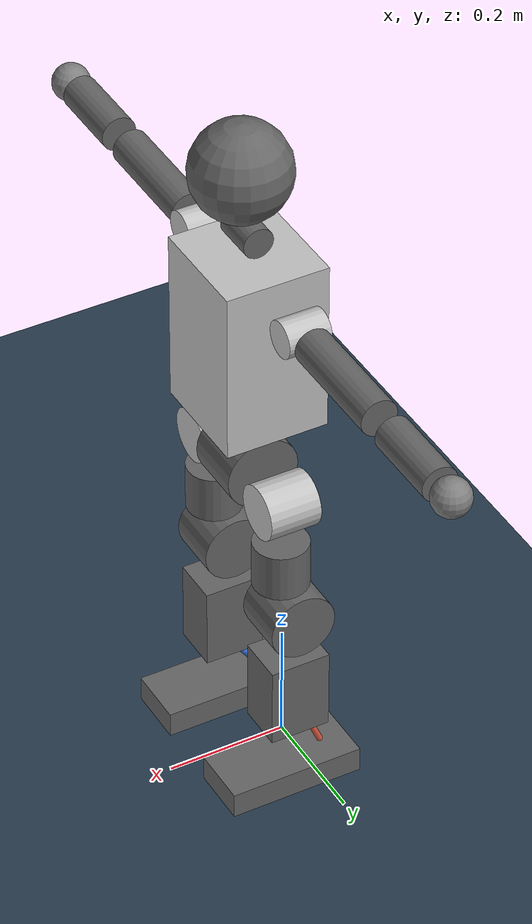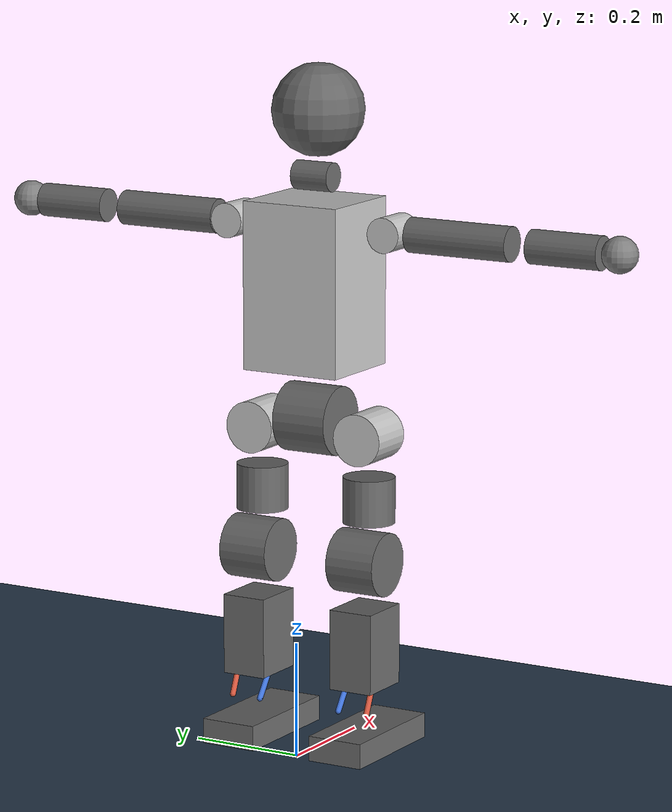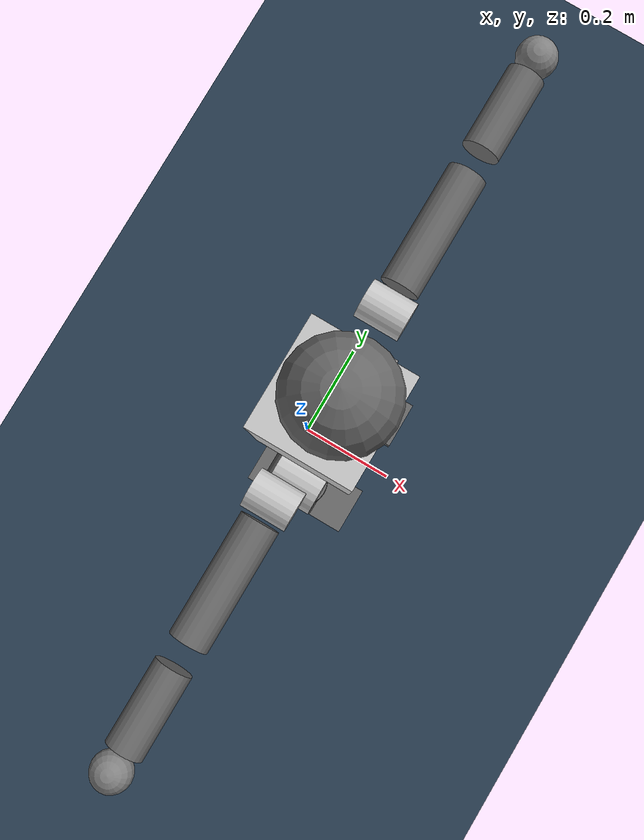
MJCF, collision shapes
<?xml version='1.0' encoding='utf-8'?>
<mujoco model="T1_parallel">
  <compiler angle="radian" meshdir="meshes/" autolimits="true"/>
  <default>
    <geom solimp="0.90 0.95 0.001" solref="0.001 1"/>
  </default>
  <option timestep="0.001" tolerance="1e-6" impratio="10" solver="Newton"/>
  <asset>
    <texture type="skybox" builtin="gradient" rgb1="0.3 0.5 0.7" rgb2="0 0 0" width="512" height="512"/>
    <texture name="texplane" type="2d" builtin="checker" rgb1=".2 .3 .4" rgb2=".1 0.15 0.2" width="512" height="512" mark="cross" markrgb=".8 .8 .8"/>
    <material name="matplane" reflectance="0.3" texture="texplane" texrepeat="1 1" texuniform="true"/>
    <mesh name="Trunk" file="Trunk.STL"/>
    <mesh name="H1" file="H1.STL"/>
    <mesh name="H2" file="H2.STL"/>
    <mesh name="AL1" file="AL1.STL"/>
    <mesh name="AL2" file="AL2.STL"/>
    <mesh name="AL3" file="AL3.STL"/>
    <mesh name="left_hand_link" file="left_hand_link.STL"/>
    <mesh name="AR1" file="AR1.STL"/>
    <mesh name="AR2" file="AR2.STL"/>
    <mesh name="AR3" file="AR3.STL"/>
    <mesh name="right_hand_link" file="right_hand_link.STL"/>
    <mesh name="Waist" file="Waist.STL"/>
    <mesh name="Hip_Pitch_Left" file="Hip_Pitch_Left.STL"/>
    <mesh name="Hip_Roll_Left" file="Hip_Roll_Left.STL"/>
    <mesh name="Hip_Yaw_Left" file="Hip_Yaw_Left.STL"/>
    <mesh name="Shank_Left" file="Shank_Left.STL"/>
    <mesh name="Ankle_Cross_Left" file="Ankle_Cross_Left.STL"/>
    <mesh name="left_foot_link" file="left_foot_link.STL"/>
    <mesh name="Hip_Pitch_Right" file="Hip_Pitch_Right.STL"/>
    <mesh name="Hip_Roll_Right" file="Hip_Roll_Right.STL"/>
    <mesh name="Hip_Yaw_Right" file="Hip_Yaw_Right.STL"/>
    <mesh name="Shank_Right" file="Shank_Right.STL"/>
    <mesh name="Ankle_Cross_Right" file="Ankle_Cross_Right.STL"/>
    <mesh name="right_foot_link" file="right_foot_link.STL"/>
    <mesh name="Logo" file="Logo.STL"/>
  </asset>
  <worldbody>
    <light directional="true" diffuse=".4 .4 .4" specular="0.1 0.1 0.1" pos="0 0 5.0" dir="0 0 -1" castshadow="false" />
    <light directional="true" diffuse=".6 .6 .6" specular="0.2 0.2 0.2" pos="0 0 4" dir="0 0 -1" />
    <geom name="ground" type="plane" pos="0 0 0" size="0 0 1" material="matplane" condim="1"/>
    <body name="trunk" pos="0 0 0.7">
      <inertial pos="0.055138 -1.42184e-06 0.105043" quat="0.999959 1.39867e-05 -0.00902028 -1.39205e-05" mass="11.7016" diaginertia="0.0915734 0.0768118 0.0556067"/>
      <site name="imu" size="0.01" pos="0.0 0.0 0.0"/>
      <joint name="world_joint" type="free" limited="false" actuatorfrclimited="false"/>
      <geom type="mesh" contype="0" conaffinity="0" group="1" density="0" rgba="0.76 0.76 0.76 1." mesh="Trunk"/>
      <geom size="0.085 0.09 0.145" pos="0.06 0 0.12" type="box" rgba="0.76 0.76 0.76 0."/>
      <geom type="mesh" contype="0" conaffinity="0" group="1" density="0" rgba="0.1 0.1 0.1 1" mesh="Logo"/>
      <body name="aahead_yaw_link" pos="0.0625 0 0.243">
        <inertial pos="-0.000508 -0.001403 0.057432" quat="0.763881 -0.0132172 0.00173419 0.645219" mass="0.44391" diaginertia="0.000241549 0.00022351 0.000149941"/>
        <joint name="aahead_yaw_joint" pos="0 0 0" axis="0 0 1" range="-1.309 1.309" armature="0.0018"/>
        <geom type="mesh" contype="0" conaffinity="0" group="1" density="0" rgba="0.4 0.4 0.4 1." mesh="H1"/>
        <geom size="0.025 0.035" pos="0 0 0.06" quat="0.707105 0.707108 0 0" type="cylinder" rgba="0.4 0.4 0.4 0."/>
        <body name="aahead_pitch_link" pos="0 0 0.06185">
          <inertial pos="0.007802 0.001262 0.098631" quat="0.988453 0.106172 -0.0745686 -0.0782786" mass="0.631019" diaginertia="0.00203553 0.00192467 0.00172381"/>
          <joint name="aahead_pitch_joint" pos="0 0 0" axis="0 1 0" range="-0.35 0.96" armature="0.0018"/>
          <geom type="mesh" contype="0" conaffinity="0" group="1" density="0" rgba="0.4 0.4 0.4 1." mesh="H2"/>
          <geom size="0.08" pos="0.01 0 0.11" rgba="0.4 0.4 0.4 0.5"/>
        </body>
      </body>
      <body name="left_shoulder_pitch_link" pos="0.0575 0.1063 0.219" quat="1 0 0.000440565 0">
        <inertial pos="-0.000677 0.044974 0" quat="0.50423 0.495734 -0.50423 0.495734" mass="0.53" diaginertia="0.001367 0.00129329 0.000292711"/>
        <joint name="left_shoulder_pitch_joint" pos="0 0 0" axis="0 1 0" range="-3.276 1.196" armature="0.0282528"/>
        <geom type="mesh" contype="0" conaffinity="0" group="1" density="0" rgba="0.76 0.76 0.76 1." mesh="AL1"/>
        <geom size="0.03 0.035" pos="0 0.047 0" quat="0.707105 0 0.707108 0" type="cylinder" rgba="0.76 0.76 0.76 0."/>
        <body name="left_shoulder_roll_link" pos="0 0.047 0">
          <inertial pos="0.003862 0.037976 0" quat="0.487991 0.511727 -0.487991 0.511727" mass="0.16" diaginertia="0.000401 0.00034538 0.00017662"/>
          <joint name="left_shoulder_roll_joint" pos="0 0 0" axis="1 0 0" range="-1.623 1.736" armature="0.0282528"/>
          <geom type="mesh" contype="0" conaffinity="0" group="1" density="0" rgba="0.4 0.4 0.4 1." mesh="AL2"/>
          <body name="left_elbow_pitch_link" pos="0.00025 0.0605 0">
            <inertial pos="0 0.085353 -9.9e-05" quat="0.70641 0.707803 0 0" mass="1.02" diaginertia="0.012869 0.012798 0.000620953"/>
            <joint name="left_elbow_pitch_joint" pos="0 0 0" axis="0 1 0" range="-2.235 2.235" armature="0.0282528"/>
            <geom type="mesh" contype="0" conaffinity="0" group="1" density="0" rgba="0.4 0.4 0.4 1." mesh="AL3"/>
            <geom size="0.03 0.095" pos="0 0.07 0" quat="0.707105 0.707108 0 0" type="cylinder" rgba="0.4 0.4 0.4 0."/>
            <body name="left_elbow_yaw_link" pos="0 0.1471 0">
              <inertial pos="-0.000107344 0.11022 0.00058741" quat="0.707869 0.706344 -5.3547e-05 -0.000214933" mass="0.329214" diaginertia="0.00819152 0.00816355 0.000224963"/>
              <joint name="left_elbow_yaw_joint" pos="0 0 0" axis="0 0 1" range="-2.077 1.658" armature="0.0282528"/>
              <geom type="mesh" contype="0" conaffinity="0" group="1" density="0" rgba="0.4 0.4 0.4 1." mesh="left_hand_link"/>
              <geom size="0.029 0.065" pos="0 0.12 0" quat="0.707105 0.707108 0 0" type="cylinder" rgba="0.4 0.4 0.4 0."/>
              <geom size="0.031" pos="0 0.216 0"/>
            </body>
          </body>
        </body>
      </body>
      <body name="right_shoulder_pitch_link" pos="0.0575 -0.1063 0.219" quat="1 0 0.000440565 0">
        <inertial pos="-0.000677 -0.044974 0" quat="0.50423 0.495734 -0.50423 0.495734" mass="0.53" diaginertia="0.001367 0.00129329 0.000292711"/>
        <joint name="right_shoulder_pitch_joint" pos="0 0 0" axis="0 1 0" range="-3.276 1.196" armature="0.0282528"/>
        <geom type="mesh" contype="0" conaffinity="0" group="1" density="0" rgba="0.76 0.76 0.76 1." mesh="AR1"/>
        <geom size="0.03 0.035" pos="0 -0.047 0" quat="0.707105 0 0.707108 0" type="cylinder" rgba="0.76 0.76 0.76 0."/>
        <body name="right_shoulder_roll_link" pos="0 -0.047 0">
          <inertial pos="0.003862 -0.037976 0" quat="0.511727 0.487991 -0.511727 0.487991" mass="0.16" diaginertia="0.000401 0.00034538 0.00017662"/>
          <joint name="right_shoulder_roll_joint" pos="0 0 0" axis="1 0 0" range="-1.736 1.623" armature="0.0282528"/>
          <geom type="mesh" contype="0" conaffinity="0" group="1" density="0" rgba="0.4 0.4 0.4 1." mesh="AR2"/>
          <body name="right_elbow_pitch_link" pos="0.00025 -0.0605 0">
            <inertial pos="0 -0.085353 -9.9e-05" quat="0.707803 0.70641 0 0" mass="1.02" diaginertia="0.012869 0.012798 0.000620953"/>
            <joint name="right_elbow_pitch_joint" pos="0 0 0" axis="0 1 0" range="-2.235 2.235" armature="0.0282528"/>
            <geom type="mesh" contype="0" conaffinity="0" group="1" density="0" rgba="0.4 0.4 0.4 1." mesh="AR3"/>
            <geom size="0.03 0.095" pos="0 -0.07 0" quat="0.707105 0.707108 0 0" type="cylinder" rgba="0.4 0.4 0.4 0."/>
            <body name="right_elbow_yaw_link" pos="0 -0.1471 0">
              <inertial pos="-0.000107344 -0.11022 0.00058741" quat="0.706344 0.707869 0.000214933 5.3547e-05" mass="0.329214" diaginertia="0.00819152 0.00816355 0.000224963"/>
              <joint name="right_elbow_yaw_joint" pos="0 0 0" axis="0 0 1" range="-1.658 2.077" armature="0.0282528"/>
              <geom type="mesh" contype="0" conaffinity="0" group="1" density="0" rgba="0.4 0.4 0.4 1." mesh="right_hand_link"/>
              <geom size="0.029 0.065" pos="0 -0.12 0" quat="0.707105 0.707108 0 0" type="cylinder" rgba="0.4 0.4 0.4 0."/>
              <geom size="0.031" pos="0 -0.216 0"/>
            </body>
          </body>
        </body>
      </body>
      <body name="waist_yaw_link" pos="0.0625 0 -0.1155">
        <inertial pos="0.002284 3e-06 0.007301" quat="0.983649 0.000360386 -0.180076 0.00269791" mass="2.581" diaginertia="0.00536742 0.005299 0.00474258"/>
        <joint name="waist_yaw_joint" pos="0 0 0" axis="0 0 1" range="-1.012 1.012" armature="0.0478125"/>
        <geom type="mesh" contype="0" conaffinity="0" group="1" density="0" rgba="0.4 0.4 0.4 1." mesh="Waist"/>
        <geom size="0.06 0.05" quat="0.707105 0.707108 0 0" type="cylinder" rgba="0.4 0.4 0.4 0."/>
        <body name="left_hip_pitch_link" pos="0 0.106 0">
          <inertial pos="0.000534 -0.007296 -0.018083" quat="0.975141 0.2211 0.0145808 0.0017406" mass="1.021" diaginertia="0.00180547 0.00145926 0.00125327"/>
          <joint name="left_hip_pitch_joint" pos="0 0 0" axis="0 1 0" range="-2.967 2.191" armature="0.0523908"/>
          <geom type="mesh" contype="0" conaffinity="0" group="1" density="0" rgba="0.76 0.76 0.76 1." mesh="Hip_Pitch_Left"/>
          <geom size="0.045 0.0425" pos="-0.002 0 -0.02" quat="0.707105 0 0.707108 0" type="cylinder" rgba="0.76 0.76 0.76 0."/>
          <body name="left_hip_roll_link" pos="0 0 -0.02">
            <inertial pos="0.001101 2.4e-05 -0.05375" quat="0.707081 -0.00599604 -0.00599604 0.707081" mass="0.385" diaginertia="0.001743 0.00151729 0.000514712"/>
            <joint name="left_hip_roll_joint" pos="0 0 0" axis="1 0 0" range="-0.363 1.536" armature="0.0478125"/>
            <geom type="mesh" contype="0" conaffinity="0" group="1" density="0" rgba="0.4 0.4 0.4 1." mesh="Hip_Roll_Left"/>
            <geom size="0.045 0.04" pos="0 0 -0.11" type="cylinder" rgba="0.4 0.4 0.4 0."/>
            <body name="left_hip_yaw_link" pos="0 0 -0.081854">
              <inertial pos="-0.007233 0.000206 -0.089184" quat="0.696808 -0.033953 -0.0315708 0.715758" mass="2.166" diaginertia="0.0257334 0.0253024 0.00259215"/>
              <joint name="left_hip_yaw_joint" pos="0 0 0" axis="0 0 1" range="-1.076 1.062" armature="0.0478125"/>
              <geom type="mesh" contype="0" conaffinity="0" group="1" density="0" rgba="0.4 0.4 0.4 1." mesh="Hip_Yaw_Left"/>
              <geom size="0.055 0.045" pos="-0.015 0 -0.135" quat="0.707105 0.707108 0 0" type="cylinder" rgba="0.4 0.4 0.4 0."/>
              <body name="left_knee_pitch_link" pos="-0.014 0 -0.134">
                <inertial pos="-0.006012 0.000259 -0.124318" quat="0.997573 0.00144024 -0.023949 0.0653706" mass="1.82" diaginertia="0.0346951 0.0345375 0.00185844"/>
                <joint name="left_knee_pitch_joint" pos="0 0 0" axis="0 1 0" range="0 2.145" armature="0.0636012"/>
                <geom type="mesh" contype="0" conaffinity="0" group="1" density="0" rgba="0.4 0.4 0.4 1." mesh="Shank_Left"/>
                <geom size="0.05 0.04 0.07" pos="0 0 -0.15" type="box" rgba="0.4 0.4 0.4 0."/>
                <body name="left_ankle_pitch_link" pos="0 0 -0.28">
                  <inertial pos="-0.003722 0 -0.007981" quat="0.443136 0.551027 0.551027 0.443136" mass="0.073" diaginertia="2.9e-05 2.56589e-05 1.13411e-05"/>
                  <joint name="left_ankle_pitch_joint" pos="0 0 0" axis="0 1 0" range="-0.87 0.35" damping="0.2" armature="0"/>
                  <geom type="mesh" contype="0" conaffinity="0" group="1" density="0" rgba="0.4 0.4 0.4 1." mesh="Ankle_Cross_Left"/>
                  <body name="left_ankle_roll_link" pos="0 0.00025 -0.012">
                    <inertial pos="-0.000249 0 -0.00914" quat="0 0.651138 0 0.75896" mass="0.685" diaginertia="0.00269361 0.002385 0.00171539"/>
                    <joint name="left_ankle_roll_joint" pos="0 0 0" axis="1 0 0" range="-0.44 0.44" damping="0.2" armature="0"/>
                    <geom type="mesh" contype="0" conaffinity="0" group="1" density="0" rgba="0.4 0.4 0.4 1." mesh="left_foot_link"/>
                    <geom size="0.112434 0.05 0.02183" pos="0.0101079 0 -0.0214208" type="box" rgba="0.4 0.4 0.4 0."/>
                    <site name="left_ankle_a_anchor" pos="-0.0415 0.0275 0.0327" size="0.004" rgba="0.1 0.8 0.1 1"/>
                    <site name="left_ankle_b_anchor" pos="-0.0415 -0.0275 0.0327" size="0.004" rgba="0.1 0.8 0.1 1"/>
                  </body>
                </body>
                <body name="left_ankle_drive_a_body" pos="-0.014 0.02775 -0.096">
                  <inertial pos="0.021467968 0 0.00117318" mass="0.03" diaginertia="2e-05 2e-05 2e-05"/>
                  <joint name="left_ankle_drive_a_joint" type="hinge" axis="0 1 0" range="-0.8187464729740654 1.0227913151109491" armature="0.0339552" damping="0.1"/>
                  <geom type="capsule" fromto="0 0 0 0.04293593596233938 0 0.002346359528693609" size="0.008" rgba="0.85 0.35 0.25 1" contype="0" conaffinity="0" group="1"/>
                  <site name="left_ankle_drive_a_tip" pos="0.04293593596233938 0 0.002346359528693609" size="0.004" rgba="0.85 0.35 0.25 1"/>
                  <body name="left_ankle_rod_a" pos="0.04293593596233938 0 0.002346359528693609">
                    <inertial pos="-0.03521796798116969 -0.000125 -0.0828231797643468" mass="0.02" diaginertia="1e-05 1e-05 1e-05"/>
                    <joint name="left_ankle_rod_a_ball" type="ball" damping="0.01" armature="0.001"/>
                    <geom type="capsule" fromto="0 0 0 -0.07043593596233938 -0.0002500000000000002 -0.1656463595286936" size="0.005" rgba="0.85 0.35 0.25 1" contype="0" conaffinity="0" group="1"/>
                    <site name="left_ankle_rod_a_end" pos="-0.07043593596233938 -0.0002500000000000002 -0.1656463595286936" size="0.004" rgba="0.85 0.35 0.25 1"/>
                  </body>
                </body>
                <body name="left_ankle_drive_b_body" pos="-0.014 -0.02775 -0.156">
                  <inertial pos="0.021296689 0 -0.002949754" mass="0.03" diaginertia="2e-05 2e-05 2e-05"/>
                  <joint name="left_ankle_drive_b_joint" type="hinge" axis="0 1 0" range="-0.6454320082084025 1.097331001571644" armature="0.0339552" damping="0.1"/>
                  <geom type="capsule" fromto="0 0 0 0.04259337754140823 0 -0.0058995075739472075" size="0.008" rgba="0.25 0.45 0.85 1" contype="0" conaffinity="0" group="1"/>
                  <site name="left_ankle_drive_b_tip" pos="0.04259337754140823 0 -0.0058995075739472075" size="0.004" rgba="0.25 0.45 0.85 1"/>
                  <body name="left_ankle_rod_b" pos="0.04259337754140823 0 -0.0058995075739472075">
                    <inertial pos="-0.03504668877070412 0.000125 -0.0487002462130264" mass="0.02" diaginertia="1e-05 1e-05 1e-05"/>
                    <joint name="left_ankle_rod_b_ball" type="ball" damping="0.01" armature="0.001"/>
                    <geom type="capsule" fromto="0 0 0 -0.07009337754140824 0.0002500000000000002 -0.0974004924260528" size="0.005" rgba="0.25 0.45 0.85 1" contype="0" conaffinity="0" group="1"/>
                    <site name="left_ankle_rod_b_end" pos="-0.07009337754140824 0.0002500000000000002 -0.0974004924260528" size="0.004" rgba="0.25 0.45 0.85 1"/>
                  </body>
                </body>
              </body>
            </body>
          </body>
        </body>
        <body name="right_hip_pitch_link" pos="0 -0.106 0">
          <inertial pos="0.000534 0.007514 -0.018082" quat="0.973446 -0.228403 0.0147148 -0.00419349" mass="1.021" diaginertia="0.00180552 0.0014632 0.00124928"/>
          <joint name="right_hip_pitch_joint" pos="0 0 0" axis="0 1 0" range="-2.967 2.191" armature="0.0523908"/>
          <geom type="mesh" contype="0" conaffinity="0" group="1" density="0" rgba="0.76 0.76 0.76 1." mesh="Hip_Pitch_Right"/>
          <geom size="0.045 0.0425" pos="-0.002 0 -0.02" quat="0.707105 0 0.707108 0" type="cylinder" rgba="0.76 0.76 0.76 0."/>
          <body name="right_hip_roll_link" pos="0 0 -0.02">
            <inertial pos="0.001099 2.4e-05 -0.053748" quat="0.707081 -0.00599604 -0.00599604 0.707081" mass="0.385" diaginertia="0.001743 0.00151729 0.000514712"/>
            <joint name="right_hip_roll_joint" pos="0 0 0" axis="1 0 0" range="-1.536 0.363" armature="0.0478125"/>
            <geom type="mesh" contype="0" conaffinity="0" group="1" density="0" rgba="0.4 0.4 0.4 1." mesh="Hip_Roll_Right"/>
            <geom size="0.045 0.04" pos="0 0 -0.11" type="cylinder" rgba="0.4 0.4 0.4 0."/>
            <body name="right_hip_yaw_link" pos="0 0 -0.081854">
              <inertial pos="-0.007191 -0.000149 -0.08922" quat="0.714468 -0.0315638 -0.0336391 0.698146" mass="2.17" diaginertia="0.0257623 0.0253298 0.00259389"/>
              <joint name="right_hip_yaw_joint" pos="0 0 0" axis="0 0 1" range="-1.076 1.062" armature="0.0478125"/>
              <geom type="mesh" contype="0" conaffinity="0" group="1" density="0" rgba="0.4 0.4 0.4 1." mesh="Hip_Yaw_Right"/>
              <geom size="0.055 0.045" pos="-0.015 0 -0.135" quat="0.707105 0.707108 0 0" type="cylinder" rgba="0.4 0.4 0.4 0."/>
              <body name="right_knee_pitch_link" pos="-0.014 0 -0.134">
                <inertial pos="-0.005741 -0.000541 -0.122602" quat="0.99926 -0.000580963 -0.023461 -0.0304754" mass="1.82" diaginertia="0.0351717 0.0349574 0.00196589"/>
                <joint name="right_knee_pitch_joint" pos="0 0 0" axis="0 1 0" range="0 2.145" armature="0.0636012"/>
                <geom type="mesh" contype="0" conaffinity="0" group="1" density="0" rgba="0.4 0.4 0.4 1." mesh="Shank_Right"/>
                <geom size="0.05 0.04 0.07" pos="0 0 -0.15" type="box" rgba="0.4 0.4 0.4 0."/>
                <body name="right_ankle_pitch_link" pos="0 0 -0.28">
                  <inertial pos="-0.003722 0 -0.007981" quat="0.443136 0.551027 0.551027 0.443136" mass="0.073" diaginertia="2.9e-05 2.56589e-05 1.13411e-05"/>
                  <joint name="right_ankle_pitch_joint" pos="0 0 0" axis="0 1 0" range="-0.87 0.35" damping="0.2" armature="0"/>
                  <geom type="mesh" contype="0" conaffinity="0" group="1" density="0" rgba="0.4 0.4 0.4 1." mesh="Ankle_Cross_Right"/>
                  <body name="right_ankle_roll_link" pos="0 -0.00025 -0.012">
                    <inertial pos="-0.000248 0 -0.00914" quat="0 0.651138 0 0.75896" mass="0.685" diaginertia="0.00269361 0.002385 0.00171539"/>
                    <joint name="right_ankle_roll_joint" pos="0 0 0" axis="1 0 0" range="-0.44 0.44" damping="0.2" armature="0"/>
                    <geom type="mesh" contype="0" conaffinity="0" group="1" density="0" rgba="0.4 0.4 0.4 1." mesh="right_foot_link"/>
                    <geom size="0.112434 0.05 0.02183" pos="0.0101079 0 -0.0214208" type="box" rgba="0.4 0.4 0.4 0."/>
                    <site name="right_ankle_a_anchor" pos="-0.0415 -0.0275 0.0327" size="0.004" rgba="0.1 0.8 0.1 1"/>
                    <site name="right_ankle_b_anchor" pos="-0.0415 0.0275 0.0327" size="0.004" rgba="0.1 0.8 0.1 1"/>
                  </body>
                </body>
                <body name="right_ankle_drive_a_body" pos="-0.014 -0.02775 -0.096">
                  <inertial pos="0.021467968 0 0.00117318" mass="0.03" diaginertia="2e-05 2e-05 2e-05"/>
                  <joint name="right_ankle_drive_a_joint" type="hinge" axis="0 1 0" range="-0.8187464729740654 1.0227913151109491" armature="0.0339552" damping="0.1"/>
                  <geom type="capsule" fromto="0 0 0 0.04293593596233938 0 0.002346359528693609" size="0.008" rgba="0.85 0.35 0.25 1" contype="0" conaffinity="0" group="1"/>
                  <site name="right_ankle_drive_a_tip" pos="0.04293593596233938 0 0.002346359528693609" size="0.004" rgba="0.85 0.35 0.25 1"/>
                  <body name="right_ankle_rod_a" pos="0.04293593596233938 0 0.002346359528693609">
                    <inertial pos="-0.03521796798116969 0.000125 -0.0828231797643468" mass="0.02" diaginertia="1e-05 1e-05 1e-05"/>
                    <joint name="right_ankle_rod_a_ball" type="ball" damping="0.01" armature="0.001"/>
                    <geom type="capsule" fromto="0 0 0 -0.07043593596233938 0.0002500000000000002 -0.1656463595286936" size="0.005" rgba="0.85 0.35 0.25 1" contype="0" conaffinity="0" group="1"/>
                    <site name="right_ankle_rod_a_end" pos="-0.07043593596233938 0.0002500000000000002 -0.1656463595286936" size="0.004" rgba="0.85 0.35 0.25 1"/>
                  </body>
                </body>
                <body name="right_ankle_drive_b_body" pos="-0.014 0.02775 -0.156">
                  <inertial pos="0.021296689 0 -0.002949754" mass="0.03" diaginertia="2e-05 2e-05 2e-05"/>
                  <joint name="right_ankle_drive_b_joint" type="hinge" axis="0 1 0" range="-0.6454320082084025 1.097331001571644" armature="0.0339552" damping="0.1"/>
                  <geom type="capsule" fromto="0 0 0 0.04259337754140823 0 -0.0058995075739472075" size="0.008" rgba="0.25 0.45 0.85 1" contype="0" conaffinity="0" group="1"/>
                  <site name="right_ankle_drive_b_tip" pos="0.04259337754140823 0 -0.0058995075739472075" size="0.004" rgba="0.25 0.45 0.85 1"/>
                  <body name="right_ankle_rod_b" pos="0.04259337754140823 0 -0.0058995075739472075">
                    <inertial pos="-0.03504668877070412 -0.000125 -0.0487002462130264" mass="0.02" diaginertia="1e-05 1e-05 1e-05"/>
                    <joint name="right_ankle_rod_b_ball" type="ball" damping="0.01" armature="0.001"/>
                    <geom type="capsule" fromto="0 0 0 -0.07009337754140824 -0.0002500000000000002 -0.0974004924260528" size="0.005" rgba="0.25 0.45 0.85 1" contype="0" conaffinity="0" group="1"/>
                    <site name="right_ankle_rod_b_end" pos="-0.07009337754140824 -0.0002500000000000002 -0.0974004924260528" size="0.004" rgba="0.25 0.45 0.85 1"/>
                  </body>
                </body>
              </body>
            </body>
          </body>
        </body>
      </body>
    </body>
  </worldbody>
  <equality>
    <connect name="left_ankle_a_loop" site1="left_ankle_rod_a_end" site2="left_ankle_a_anchor" solref="0.002 1" solimp="0.95 0.99 0.001"/>
    <connect name="left_ankle_b_loop" site1="left_ankle_rod_b_end" site2="left_ankle_b_anchor" solref="0.002 1" solimp="0.95 0.99 0.001"/>
    <connect name="right_ankle_a_loop" site1="right_ankle_rod_a_end" site2="right_ankle_a_anchor" solref="0.002 1" solimp="0.95 0.99 0.001"/>
    <connect name="right_ankle_b_loop" site1="right_ankle_rod_b_end" site2="right_ankle_b_anchor" solref="0.002 1" solimp="0.95 0.99 0.001"/>
  </equality>
  <actuator>
    <motor name="aahead_yaw_joint" joint="aahead_yaw_joint" forcerange="-7.0 7.0"/>
    <motor name="aahead_pitch_joint" joint="aahead_pitch_joint" forcerange="-7.0 7.0"/>
    <motor name="left_shoulder_pitch_joint" joint="left_shoulder_pitch_joint" forcerange="-38.3 38.3"/>
    <motor name="left_shoulder_roll_joint" joint="left_shoulder_roll_joint" forcerange="-38.3 38.3"/>
    <motor name="left_elbow_pitch_joint" joint="left_elbow_pitch_joint" forcerange="-38.3 38.3"/>
    <motor name="left_elbow_yaw_joint" joint="left_elbow_yaw_joint" forcerange="-38.3 38.3"/>
    <motor name="right_shoulder_pitch_joint" joint="right_shoulder_pitch_joint" forcerange="-38.3 38.3"/>
    <motor name="right_shoulder_roll_joint" joint="right_shoulder_roll_joint" forcerange="-38.3 38.3"/>
    <motor name="right_elbow_pitch_joint" joint="right_elbow_pitch_joint" forcerange="-38.3 38.3"/>
    <motor name="right_elbow_yaw_joint" joint="right_elbow_yaw_joint" forcerange="-38.3 38.3"/>
    <motor name="waist_yaw_joint" joint="waist_yaw_joint" forcerange="-68.0 68.0"/>
    <motor name="left_hip_pitch_joint" joint="left_hip_pitch_joint" forcerange="-98.8 98.8"/>
    <motor name="left_hip_roll_joint" joint="left_hip_roll_joint" forcerange="-68.0 68.0"/>
    <motor name="left_hip_yaw_joint" joint="left_hip_yaw_joint" forcerange="-68.0 68.0"/>
    <motor name="left_knee_pitch_joint" joint="left_knee_pitch_joint" forcerange="-130.5 130.5"/>
    <motor name="left_ankle_drive_a_joint" joint="left_ankle_drive_a_joint" forcerange="-43 43"/>
    <motor name="left_ankle_drive_b_joint" joint="left_ankle_drive_b_joint" forcerange="-43 43"/>
    <motor name="right_hip_pitch_joint" joint="right_hip_pitch_joint" forcerange="-98.8 98.8"/>
    <motor name="right_hip_roll_joint" joint="right_hip_roll_joint" forcerange="-68.0 68.0"/>
    <motor name="right_hip_yaw_joint" joint="right_hip_yaw_joint" forcerange="-68.0 68.0"/>
    <motor name="right_knee_pitch_joint" joint="right_knee_pitch_joint" forcerange="-130.5 130.5"/>
    <motor name="right_ankle_drive_a_joint" joint="right_ankle_drive_a_joint" forcerange="-43 43"/>
    <motor name="right_ankle_drive_b_joint" joint="right_ankle_drive_b_joint" forcerange="-43 43"/>
  </actuator>
  <sensor>
    <framequat name="orientation" objtype="site" noise="0.001" objname="imu" />
    <gyro name="angular-velocity" site="imu" noise="0.005" />
  </sensor>
</mujoco>
